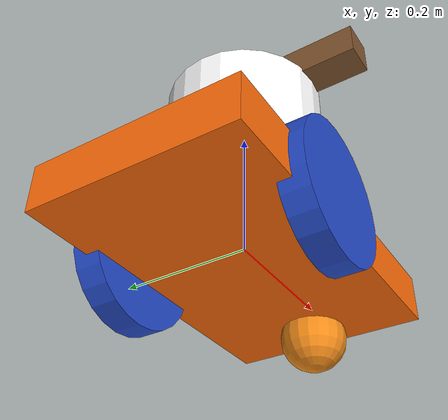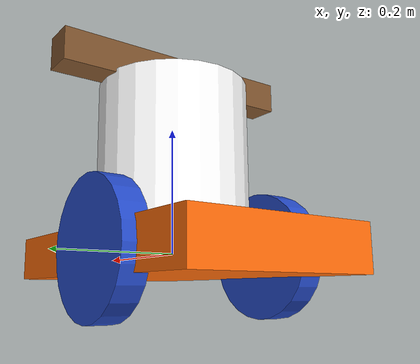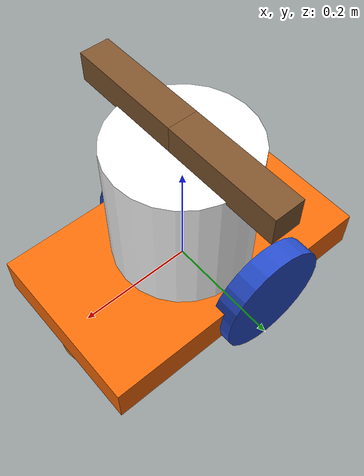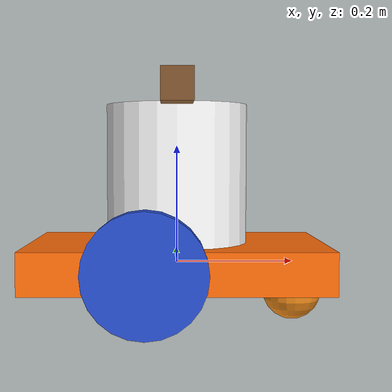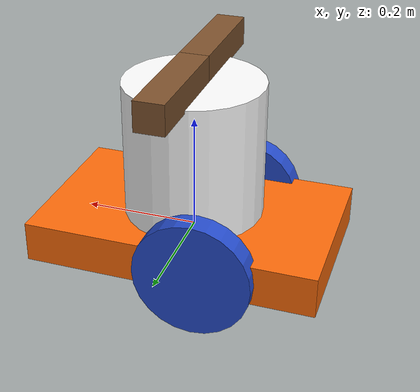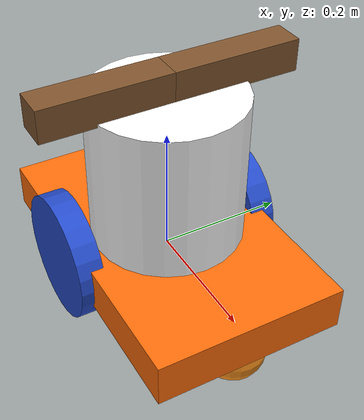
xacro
<?xml version="1.0" encoding="utf-8"?>
<robot name="bw_robo">

  <material name="black">
    <color rgba="0.0 0.0 0.0 1.0"/>
  </material>
  <material name="blue">
    <color rgba="0.203125 0.23828125 0.28515625 1.0"/>
  </material>
  <material name="green">
    <color rgba="0.0 0.8 0.0 1.0"/>
  </material>
  <material name="grey">
    <color rgba="0.2 0.2 0.2 1.0"/>
  </material>
  <material name="orange">
    <color rgba="1.0 0.423529411765 0.0392156862745 1.0"/>
  </material>
  <material name="brown">
    <color rgba="0.870588235294 0.811764705882 0.764705882353 1.0"/>
  </material>
  <material name="red">
    <color rgba="0.80078125 0.12890625 0.1328125 1.0"/>
  </material>
  <material name="white">
    <color rgba="1.0 1.0 1.0 1.0"/>
  </material>

  <gazebo reference="link_chassis">
    <material>Gazebo/Orange</material>
  </gazebo>
  <gazebo reference="link_left_wheel">
    <material>Gazebo/Blue</material>
  </gazebo>
  <gazebo reference="link_right_wheel">
    <material>Gazebo/Blue</material>
  </gazebo>
  <gazebo reference="beltwagon">
    <material>Gazebo/white</material>
  </gazebo>
  <gazebo reference="rear_boom">
    <material>Gazebo/brown</material>
  </gazebo>
  <gazebo reference="front_boom">
    <material>Gazebo/brown</material>
  </gazebo>

  <gazebo>
    <plugin filename="libgazebo_ros_diff_drive.so" name="differential_drive_controller">
      <legacyMode>false</legacyMode>
      <alwaysOn>true</alwaysOn>
      <updateRate>20</updateRate>
      <leftJoint>joint_left_wheel</leftJoint>
      <rightJoint>joint_right_wheel</rightJoint>
      <wheelSeparation>0.2</wheelSeparation>
      <wheelDiameter>0.2</wheelDiameter>
      <torque>0.1</torque>
      <commandTopic>cmd_vel</commandTopic>
      <odometryTopic>odom</odometryTopic>
      <odometryFrame>odom</odometryFrame>
      <robotBaseFrame>link_chassis</robotBaseFrame>
    </plugin>
  </gazebo>

  <link name="link_chassis"> <!-- consider as a base_link -->
    <!-- pose and inertial -->
    <pose>0 0 0.1 0 0 0</pose>
    <inertial>
      <mass value="5"/>
      <origin rpy="0 0 0" xyz="0 0 0.1"/>
      <inertia ixx="0.0395416666667" ixy="0" ixz="0" iyy="0.106208333333" iyz="0" 		 	        izz="0.106208333333"/>
    </inertial>
    <collision name="collision_chassis">
      <geometry>
        <box size="0.5 0.3 0.07"/>
      </geometry>
    </collision>
    <visual>
      <origin rpy="0 0 0" xyz="0 0 0"/>
      <geometry>
        <box size="0.5 0.3 0.07"/>
      </geometry>
      <material name="orange"/>
    </visual>

    <!-- caster front -->
    <collision name="caster_front_collision">
      <origin rpy=" 0 0 0" xyz="0.35 0 -0.05"/>
      <geometry>
        <sphere radius="0.05"/>
      </geometry>
      <surface>
        <friction>
          <ode>
            <mu>0</mu>
            <mu2>0</mu2>
            <slip1>1.0</slip1>
            <slip2>1.0</slip2>
          </ode>
        </friction>
      </surface>
    </collision>
    <visual name="caster_front_visual">
      <origin rpy=" 0 0 0" xyz="0.2 0 -0.05"/>
      <geometry>
        <sphere radius="0.05"/>
      </geometry>
    </visual>
  </link>

    <!-- right_wheel -->
  <link name="link_right_wheel">
    <inertial>
       <mass value="0.2"/>
       <origin rpy="0 1.5707 1.5707" xyz="0 0 0"/>
       <inertia ixx="0.000526666666667" ixy="0" ixz="0" iyy="0.000526666666667" iyz="0" 		izz="0.001"/>
    </inertial>
    <collision name="link_right_wheel_collision">
      <origin rpy="0 1.5707 1.5707" xyz="0 0 0"/>
      <geometry>
        <cylinder length="0.04" radius="0.1"/>
      </geometry>
    </collision>
    <visual>
      <origin rpy="0 1.5707 1.5707" xyz="0 0 0"/>
      <geometry>
       <cylinder length="0.04" radius="0.1"/>
      </geometry>
    </visual>
  </link>

  <joint name="joint_right_wheel" type="continuous">
     <origin rpy="0 0 0" xyz="-0.05 0.15 0"/>
     <child link="link_right_wheel"/>
     <parent link="link_chassis"/>
     <axis rpy="0 0 0" xyz="0 1 0"/>
     <limit effort="10000" velocity="1000"/>
     <joint_properties damping="1.0" friction="1.0"/>
  </joint>

   <!-- left_wheel -->
  <link name="link_left_wheel">
    <inertial>
       <mass value="0.2"/>
       <origin rpy="0 1.5707 1.5707" xyz="0 0 0"/>
       <inertia ixx="0.000526666666667" ixy="0" ixz="0" iyy="0.000526666666667" iyz="0" 		izz="0.001"/>
    </inertial>
    <collision name="link_left_wheel_collision">
      <origin rpy="0 1.5707 1.5707" xyz="0 0 0"/>
      <geometry>
        <cylinder length="0.04" radius="0.1"/>
      </geometry>
    </collision>
    <visual>
      <origin rpy="0 1.5707 1.5707" xyz="0 0 0"/>
      <geometry>
       <cylinder length="0.04" radius="0.1"/>
      </geometry>
    </visual>
  </link>

  <joint name="joint_left_wheel" type="continuous">
     <origin rpy="0 0 0" xyz="-0.05 -0.15 0"/>
     <child link="link_left_wheel"/>
     <parent link="link_chassis"/>
     <axis rpy="0 0 0" xyz="0 1 0"/>
     <limit effort="10000" velocity="1000"/>
     <joint_properties damping="1.0" friction="1.0"/>
  </joint>

   <!-- beltwagon -->
  <link name="beltwagon">
   <inertial>
      <mass value="5"/>
      <origin rpy="0 0 0" xyz="0 0 0.17"/>
      <inertia ixx="0.0395416666667" ixy="0" ixz="0" iyy="0.106208333333" iyz="0" 		 	        izz="0.106208333333"/>
    </inertial>
    <collision name="beltwagon">
      <geometry>
        <cylinder length="0.3" radius="0.12"/>
      </geometry>
    </collision>
    <visual>
      <origin rpy="0 0 0" xyz="0 0 0"/>
      <geometry>
        <cylinder length="0.3" radius="0.12"/>
      </geometry>
      <material name="white"/>
    </visual>
  </link>

  <joint name="chassis_to_beltwagon" type="revolute">
     <origin rpy="0 0 0" xyz="0 0 0.12"/>
     <child link="beltwagon"/>
     <parent link="link_chassis"/>
     <axis rpy="0 0 0" xyz="0 0 1"/>
     <limit effort="10000" lower="-1.5" upper="1.5" velocity="1000"/>
  </joint>

   <!-- rear_boom -->
  <link name="rear_boom">
   <inertial>
    <mass value="0.5"/>
    <origin rpy="0 0 0" xyz="0 0.1 0"/>
    <inertia ixx="0.001770833" ixy="0" ixz="0" iyy="0.001770833" iyz="0" 		 	        izz="0.00020833"/>
    </inertial>
    <collision name="rear_boom">
      <geometry>
        <box size="0.05 0.2 0.05"/>
      </geometry>
    </collision>
    <visual>
      <origin rpy="0 0 0" xyz="0 0.1 0"/>
      <geometry>
        <box size="0.05 0.2 0.05"/>
      </geometry>
     </visual>
  </link>

  <joint name="beltwagon_to_rear_boom" type="revolute">
     <origin rpy="0 0 0" xyz="0 0 0.17"/>
     <child link="rear_boom"/>
     <parent link="beltwagon"/>
     <limit effort="1000" lower="-1.5" upper="1.5" velocity="1000"/>
  </joint>

   <!-- front_boom -->
  <link name="front_boom">
   <inertial>
    <mass value="0.5"/>
    <origin rpy="0 0 0" xyz="0 -0.1 0"/>
    <inertia ixx="0.001770833" ixy="0" ixz="0" iyy="0.001770833" iyz="0" 		 	        izz="0.00020833"/>
    </inertial>
    <collision name="front_boom">
      <geometry>
        <box size="0.05 0.2 0.05"/>
      </geometry>
    </collision>
    <visual>
      <origin rpy="0 0 0" xyz="0 -0.1 0"/>
      <geometry>
        <box size="0.05 0.2 0.05"/>
      </geometry>
     </visual>
  </link>

  <joint name="beltwagon_to_front_boom" type="revolute">
     <origin rpy="0 0 0" xyz="0 0 0.17"/>
     <child link="front_boom"/>
     <parent link="beltwagon"/>
     <axis rpy="0 0 0" xyz="1 0 0"/>
     <limit effort="10000" lower="-1.5" upper="1.5" velocity="1000"/>
  </joint>

</robot>
